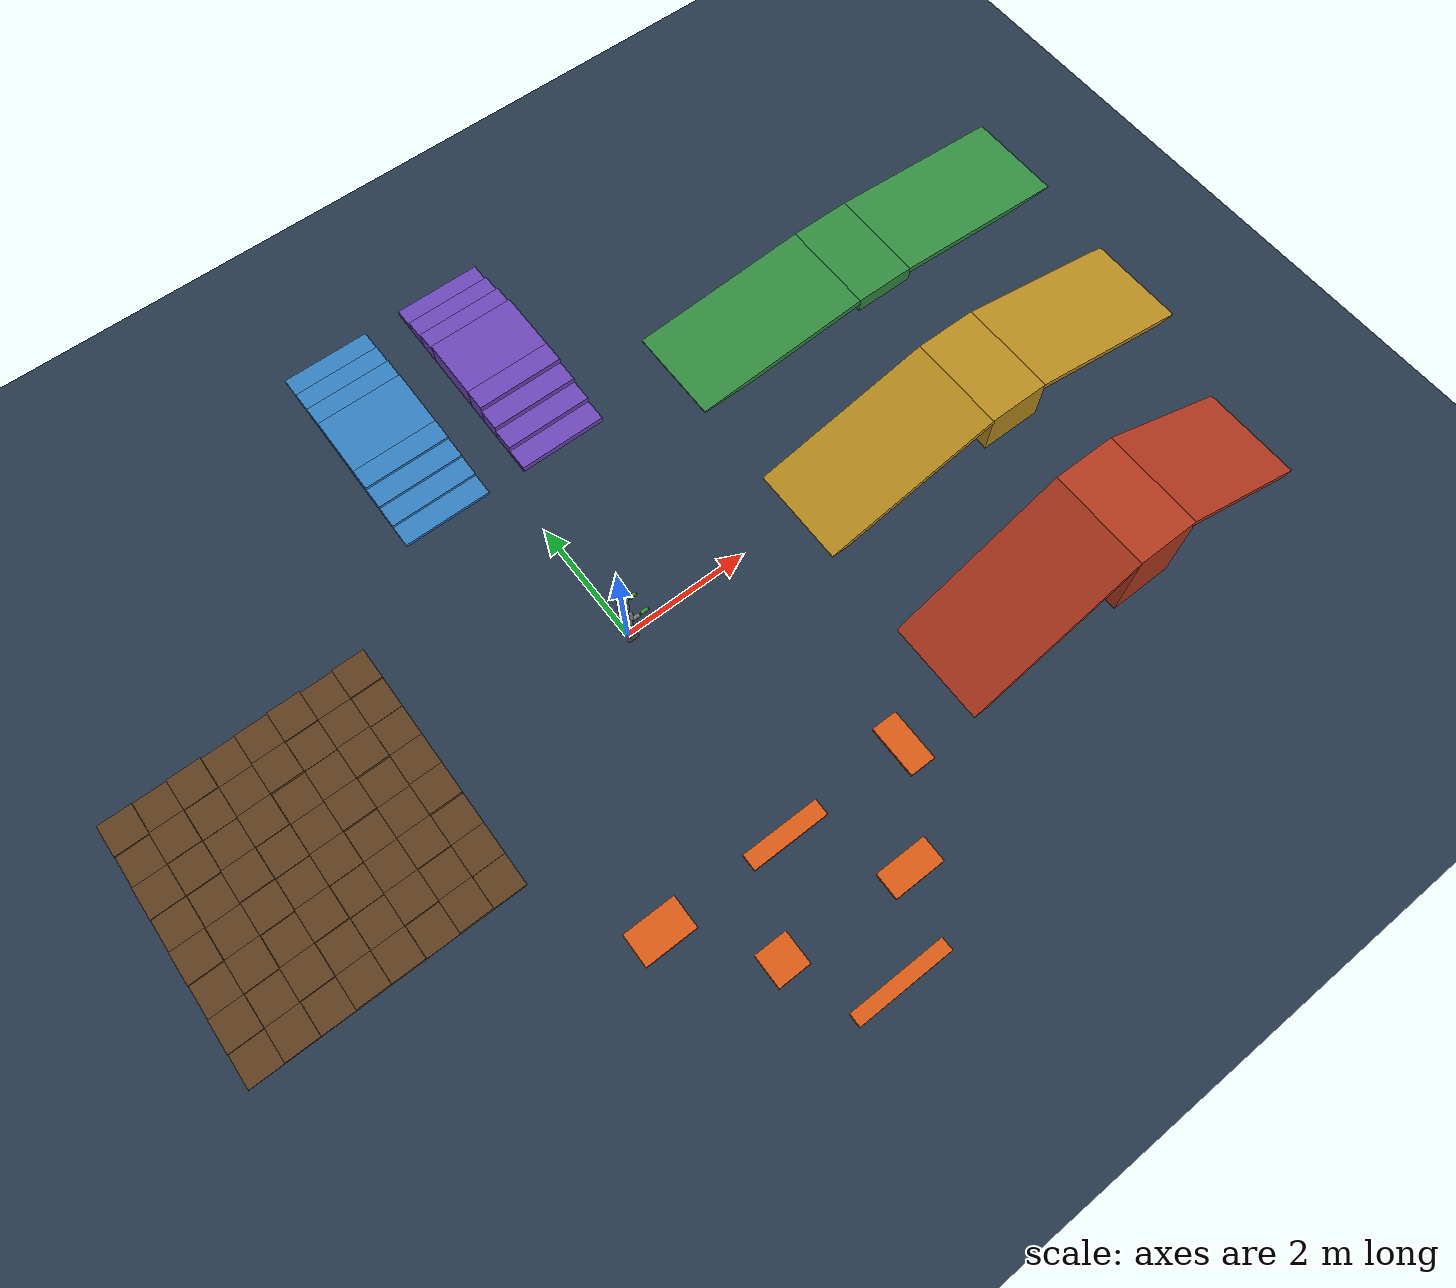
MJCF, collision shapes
<mujoco model="r1 mixed terrain course">
  <compiler angle="radian" meshdir="assets"/>
  <include file="unitree_r1/xmls/r1.xml"/>

  <statistic center="1.5 0 0.8" extent="11"/>

  <visual>
    <headlight diffuse="0.6 0.6 0.6" ambient="0.3 0.3 0.3" specular="0 0 0"/>
    <rgba haze="0.15 0.25 0.35 1"/>
    <global azimuth="-130" elevation="-25"/>
  </visual>

  <asset>
    <texture type="skybox" builtin="gradient" rgb1="0.3 0.5 0.7" rgb2="0 0 0"
             width="512" height="3072"/>
    <texture type="2d" name="mixed_floor_checker" builtin="checker" mark="edge"
             rgb1="0.20 0.28 0.36" rgb2="0.10 0.15 0.22"
             markrgb="0.75 0.75 0.75" width="300" height="300"/>
    <material name="mixed_floor" texture="mixed_floor_checker" texuniform="true"
              texrepeat="24 18" reflectance="0.08"/>
    <material name="slope_5_material" rgba="0.20 0.55 0.25 1"/>
    <material name="slope_15_material" rgba="0.72 0.55 0.12 1"/>
    <material name="slope_30_material" rgba="0.70 0.22 0.12 1"/>
    <material name="stairs_5_material" rgba="0.20 0.50 0.75 1"/>
    <material name="stairs_10_material" rgba="0.42 0.28 0.72 1"/>
    <material name="rough_material" rgba="0.36 0.24 0.12 1"/>
    <material name="obstacle_material" rgba="0.85 0.35 0.08 1"/>
  </asset>

  <default>
    <geom friction="0.9 0.005 0.0001" solimp="0.9 0.95 0.001" solref="0.002 1"/>
    <default class="mixed_terrain">
      <!-- group 0 is visible to the RoughController 187-point height scan. -->
      <geom priority="1" condim="3" group="0"
            friction="1.0 0.005 0.0001"/>
    </default>
  </default>

  <worldbody>
    <light pos="0 0 6" dir="0 0 -1" directional="true"/>

    <!-- Wide flat reference floor. The central 4x4 m area is obstacle-free. -->
    <geom name="mixed_floor" class="mixed_terrain" type="plane" size="12 9 0.05"
          material="mixed_floor"/>

    <!--
      Three independent +X lanes. Each inclined surface is 3 m long, followed
      by a 1 m plateau and a 3 m descent back to z=0.
    -->
    <geom name="slope_5_up" class="mixed_terrain" type="box"
          pos="4.498649834 3 0.080923879" size="1.5 0.8 0.05"
          quat="0.9990482216 0 -0.0436193874 0" material="slope_5_material"/>
    <geom name="slope_5_plateau" class="mixed_terrain" type="box"
          pos="6.488584094 3 0.130733614" size="0.5 0.8 0.130733614"
          material="slope_5_material"/>
    <geom name="slope_5_down" class="mixed_terrain" type="box"
          pos="8.478518354 3 0.080923879" size="1.5 0.8 0.05"
          quat="0.9990482216 0 0.0436193874 0" material="slope_5_material"/>

    <geom name="slope_15_up" class="mixed_terrain" type="box"
          pos="4.461829691 0 0.339932276" size="1.5 0.8 0.05"
          quat="0.9914448614 0 -0.1305261922 0" material="slope_15_material"/>
    <geom name="slope_15_plateau" class="mixed_terrain" type="box"
          pos="6.397777479 0 0.388228568" size="0.5 0.8 0.388228568"
          material="slope_15_material"/>
    <geom name="slope_15_down" class="mixed_terrain" type="box"
          pos="8.333725266 0 0.339932276" size="1.5 0.8 0.05"
          quat="0.9914448614 0 0.1305261922 0" material="slope_15_material"/>

    <geom name="slope_30_up" class="mixed_terrain" type="box"
          pos="4.324038106 -3 0.706698730" size="1.5 0.8 0.05"
          quat="0.9659258263 0 -0.2588190451 0" material="slope_30_material"/>
    <geom name="slope_30_plateau" class="mixed_terrain" type="box"
          pos="6.098076211 -3 0.75" size="0.5 0.8 0.75"
          material="slope_30_material"/>
    <geom name="slope_30_down" class="mixed_terrain" type="box"
          pos="7.872114317 -3 0.706698730" size="1.5 0.8 0.05"
          quat="0.9659258263 0 0.2588190451 0" material="slope_30_material"/>

    <!-- 5 cm staircase lane: four rises, 1 m landing, four drops to floor. -->
    <geom name="stairs_5_up_1" class="mixed_terrain" type="box"
          pos="-1 3.175 0.025" size="0.7 0.175 0.025" material="stairs_5_material"/>
    <geom name="stairs_5_up_2" class="mixed_terrain" type="box"
          pos="-1 3.525 0.05" size="0.7 0.175 0.05" material="stairs_5_material"/>
    <geom name="stairs_5_up_3" class="mixed_terrain" type="box"
          pos="-1 3.875 0.075" size="0.7 0.175 0.075" material="stairs_5_material"/>
    <geom name="stairs_5_up_4" class="mixed_terrain" type="box"
          pos="-1 4.225 0.1" size="0.7 0.175 0.1" material="stairs_5_material"/>
    <geom name="stairs_5_landing" class="mixed_terrain" type="box"
          pos="-1 4.9 0.1" size="0.7 0.5 0.1" material="stairs_5_material"/>
    <geom name="stairs_5_down_1" class="mixed_terrain" type="box"
          pos="-1 5.575 0.075" size="0.7 0.175 0.075" material="stairs_5_material"/>
    <geom name="stairs_5_down_2" class="mixed_terrain" type="box"
          pos="-1 5.925 0.05" size="0.7 0.175 0.05" material="stairs_5_material"/>
    <geom name="stairs_5_down_3" class="mixed_terrain" type="box"
          pos="-1 6.275 0.025" size="0.7 0.175 0.025" material="stairs_5_material"/>

    <!-- 10 cm staircase lane: four rises, 1 m landing, four drops to floor. -->
    <geom name="stairs_10_up_1" class="mixed_terrain" type="box"
          pos="1 3.175 0.05" size="0.7 0.175 0.05" material="stairs_10_material"/>
    <geom name="stairs_10_up_2" class="mixed_terrain" type="box"
          pos="1 3.525 0.1" size="0.7 0.175 0.1" material="stairs_10_material"/>
    <geom name="stairs_10_up_3" class="mixed_terrain" type="box"
          pos="1 3.875 0.15" size="0.7 0.175 0.15" material="stairs_10_material"/>
    <geom name="stairs_10_up_4" class="mixed_terrain" type="box"
          pos="1 4.225 0.2" size="0.7 0.175 0.2" material="stairs_10_material"/>
    <geom name="stairs_10_landing" class="mixed_terrain" type="box"
          pos="1 4.9 0.2" size="0.7 0.5 0.2" material="stairs_10_material"/>
    <geom name="stairs_10_down_1" class="mixed_terrain" type="box"
          pos="1 5.575 0.15" size="0.7 0.175 0.15" material="stairs_10_material"/>
    <geom name="stairs_10_down_2" class="mixed_terrain" type="box"
          pos="1 5.925 0.1" size="0.7 0.175 0.1" material="stairs_10_material"/>
    <geom name="stairs_10_down_3" class="mixed_terrain" type="box"
          pos="1 6.275 0.05" size="0.7 0.175 0.05" material="stairs_10_material"/>

    <!-- Deterministic 4x4 m rough patch: 8x8 overlapping 0.5 m tiles. -->
    <geom name="rough_tile_00" class="mixed_terrain" type="box" pos="-6.75 -1.75 0.01"  size="0.251 0.251 0.01"  material="rough_material"/>
    <geom name="rough_tile_01" class="mixed_terrain" type="box" pos="-6.25 -1.75 0.02"  size="0.251 0.251 0.02"  material="rough_material"/>
    <geom name="rough_tile_02" class="mixed_terrain" type="box" pos="-5.75 -1.75 0.015" size="0.251 0.251 0.015" material="rough_material"/>
    <geom name="rough_tile_03" class="mixed_terrain" type="box" pos="-5.25 -1.75 0.03"  size="0.251 0.251 0.03"  material="rough_material"/>
    <geom name="rough_tile_04" class="mixed_terrain" type="box" pos="-4.75 -1.75 0.025" size="0.251 0.251 0.025" material="rough_material"/>
    <geom name="rough_tile_05" class="mixed_terrain" type="box" pos="-4.25 -1.75 0.01"  size="0.251 0.251 0.01"  material="rough_material"/>
    <geom name="rough_tile_06" class="mixed_terrain" type="box" pos="-3.75 -1.75 0.035" size="0.251 0.251 0.035" material="rough_material"/>
    <geom name="rough_tile_07" class="mixed_terrain" type="box" pos="-3.25 -1.75 0.02"  size="0.251 0.251 0.02"  material="rough_material"/>

    <geom name="rough_tile_08" class="mixed_terrain" type="box" pos="-6.75 -1.25 0.025" size="0.251 0.251 0.025" material="rough_material"/>
    <geom name="rough_tile_09" class="mixed_terrain" type="box" pos="-6.25 -1.25 0.015" size="0.251 0.251 0.015" material="rough_material"/>
    <geom name="rough_tile_10" class="mixed_terrain" type="box" pos="-5.75 -1.25 0.035" size="0.251 0.251 0.035" material="rough_material"/>
    <geom name="rough_tile_11" class="mixed_terrain" type="box" pos="-5.25 -1.25 0.02"  size="0.251 0.251 0.02"  material="rough_material"/>
    <geom name="rough_tile_12" class="mixed_terrain" type="box" pos="-4.75 -1.25 0.01"  size="0.251 0.251 0.01"  material="rough_material"/>
    <geom name="rough_tile_13" class="mixed_terrain" type="box" pos="-4.25 -1.25 0.03"  size="0.251 0.251 0.03"  material="rough_material"/>
    <geom name="rough_tile_14" class="mixed_terrain" type="box" pos="-3.75 -1.25 0.015" size="0.251 0.251 0.015" material="rough_material"/>
    <geom name="rough_tile_15" class="mixed_terrain" type="box" pos="-3.25 -1.25 0.025" size="0.251 0.251 0.025" material="rough_material"/>

    <geom name="rough_tile_16" class="mixed_terrain" type="box" pos="-6.75 -0.75 0.015" size="0.251 0.251 0.015" material="rough_material"/>
    <geom name="rough_tile_17" class="mixed_terrain" type="box" pos="-6.25 -0.75 0.03"  size="0.251 0.251 0.03"  material="rough_material"/>
    <geom name="rough_tile_18" class="mixed_terrain" type="box" pos="-5.75 -0.75 0.01"  size="0.251 0.251 0.01"  material="rough_material"/>
    <geom name="rough_tile_19" class="mixed_terrain" type="box" pos="-5.25 -0.75 0.04"  size="0.251 0.251 0.04"  material="rough_material"/>
    <geom name="rough_tile_20" class="mixed_terrain" type="box" pos="-4.75 -0.75 0.02"  size="0.251 0.251 0.02"  material="rough_material"/>
    <geom name="rough_tile_21" class="mixed_terrain" type="box" pos="-4.25 -0.75 0.025" size="0.251 0.251 0.025" material="rough_material"/>
    <geom name="rough_tile_22" class="mixed_terrain" type="box" pos="-3.75 -0.75 0.035" size="0.251 0.251 0.035" material="rough_material"/>
    <geom name="rough_tile_23" class="mixed_terrain" type="box" pos="-3.25 -0.75 0.01"  size="0.251 0.251 0.01"  material="rough_material"/>

    <geom name="rough_tile_24" class="mixed_terrain" type="box" pos="-6.75 -0.25 0.035" size="0.251 0.251 0.035" material="rough_material"/>
    <geom name="rough_tile_25" class="mixed_terrain" type="box" pos="-6.25 -0.25 0.02"  size="0.251 0.251 0.02"  material="rough_material"/>
    <geom name="rough_tile_26" class="mixed_terrain" type="box" pos="-5.75 -0.25 0.025" size="0.251 0.251 0.025" material="rough_material"/>
    <geom name="rough_tile_27" class="mixed_terrain" type="box" pos="-5.25 -0.25 0.015" size="0.251 0.251 0.015" material="rough_material"/>
    <geom name="rough_tile_28" class="mixed_terrain" type="box" pos="-4.75 -0.25 0.03"  size="0.251 0.251 0.03"  material="rough_material"/>
    <geom name="rough_tile_29" class="mixed_terrain" type="box" pos="-4.25 -0.25 0.01"  size="0.251 0.251 0.01"  material="rough_material"/>
    <geom name="rough_tile_30" class="mixed_terrain" type="box" pos="-3.75 -0.25 0.02"  size="0.251 0.251 0.02"  material="rough_material"/>
    <geom name="rough_tile_31" class="mixed_terrain" type="box" pos="-3.25 -0.25 0.04"  size="0.251 0.251 0.04"  material="rough_material"/>

    <geom name="rough_tile_32" class="mixed_terrain" type="box" pos="-6.75 0.25 0.02"  size="0.251 0.251 0.02"  material="rough_material"/>
    <geom name="rough_tile_33" class="mixed_terrain" type="box" pos="-6.25 0.25 0.01"  size="0.251 0.251 0.01"  material="rough_material"/>
    <geom name="rough_tile_34" class="mixed_terrain" type="box" pos="-5.75 0.25 0.04"  size="0.251 0.251 0.04"  material="rough_material"/>
    <geom name="rough_tile_35" class="mixed_terrain" type="box" pos="-5.25 0.25 0.025" size="0.251 0.251 0.025" material="rough_material"/>
    <geom name="rough_tile_36" class="mixed_terrain" type="box" pos="-4.75 0.25 0.015" size="0.251 0.251 0.015" material="rough_material"/>
    <geom name="rough_tile_37" class="mixed_terrain" type="box" pos="-4.25 0.25 0.035" size="0.251 0.251 0.035" material="rough_material"/>
    <geom name="rough_tile_38" class="mixed_terrain" type="box" pos="-3.75 0.25 0.01"  size="0.251 0.251 0.01"  material="rough_material"/>
    <geom name="rough_tile_39" class="mixed_terrain" type="box" pos="-3.25 0.25 0.03"  size="0.251 0.251 0.03"  material="rough_material"/>

    <geom name="rough_tile_40" class="mixed_terrain" type="box" pos="-6.75 0.75 0.03"  size="0.251 0.251 0.03"  material="rough_material"/>
    <geom name="rough_tile_41" class="mixed_terrain" type="box" pos="-6.25 0.75 0.025" size="0.251 0.251 0.025" material="rough_material"/>
    <geom name="rough_tile_42" class="mixed_terrain" type="box" pos="-5.75 0.75 0.015" size="0.251 0.251 0.015" material="rough_material"/>
    <geom name="rough_tile_43" class="mixed_terrain" type="box" pos="-5.25 0.75 0.035" size="0.251 0.251 0.035" material="rough_material"/>
    <geom name="rough_tile_44" class="mixed_terrain" type="box" pos="-4.75 0.75 0.01"  size="0.251 0.251 0.01"  material="rough_material"/>
    <geom name="rough_tile_45" class="mixed_terrain" type="box" pos="-4.25 0.75 0.02"  size="0.251 0.251 0.02"  material="rough_material"/>
    <geom name="rough_tile_46" class="mixed_terrain" type="box" pos="-3.75 0.75 0.04"  size="0.251 0.251 0.04"  material="rough_material"/>
    <geom name="rough_tile_47" class="mixed_terrain" type="box" pos="-3.25 0.75 0.015" size="0.251 0.251 0.015" material="rough_material"/>

    <geom name="rough_tile_48" class="mixed_terrain" type="box" pos="-6.75 1.25 0.01"  size="0.251 0.251 0.01"  material="rough_material"/>
    <geom name="rough_tile_49" class="mixed_terrain" type="box" pos="-6.25 1.25 0.035" size="0.251 0.251 0.035" material="rough_material"/>
    <geom name="rough_tile_50" class="mixed_terrain" type="box" pos="-5.75 1.25 0.02"  size="0.251 0.251 0.02"  material="rough_material"/>
    <geom name="rough_tile_51" class="mixed_terrain" type="box" pos="-5.25 1.25 0.015" size="0.251 0.251 0.015" material="rough_material"/>
    <geom name="rough_tile_52" class="mixed_terrain" type="box" pos="-4.75 1.25 0.04"  size="0.251 0.251 0.04"  material="rough_material"/>
    <geom name="rough_tile_53" class="mixed_terrain" type="box" pos="-4.25 1.25 0.025" size="0.251 0.251 0.025" material="rough_material"/>
    <geom name="rough_tile_54" class="mixed_terrain" type="box" pos="-3.75 1.25 0.03"  size="0.251 0.251 0.03"  material="rough_material"/>
    <geom name="rough_tile_55" class="mixed_terrain" type="box" pos="-3.25 1.25 0.02"  size="0.251 0.251 0.02"  material="rough_material"/>

    <geom name="rough_tile_56" class="mixed_terrain" type="box" pos="-6.75 1.75 0.025" size="0.251 0.251 0.025" material="rough_material"/>
    <geom name="rough_tile_57" class="mixed_terrain" type="box" pos="-6.25 1.75 0.015" size="0.251 0.251 0.015" material="rough_material"/>
    <geom name="rough_tile_58" class="mixed_terrain" type="box" pos="-5.75 1.75 0.03"  size="0.251 0.251 0.03"  material="rough_material"/>
    <geom name="rough_tile_59" class="mixed_terrain" type="box" pos="-5.25 1.75 0.01"  size="0.251 0.251 0.01"  material="rough_material"/>
    <geom name="rough_tile_60" class="mixed_terrain" type="box" pos="-4.75 1.75 0.02"  size="0.251 0.251 0.02"  material="rough_material"/>
    <geom name="rough_tile_61" class="mixed_terrain" type="box" pos="-4.25 1.75 0.04"  size="0.251 0.251 0.04"  material="rough_material"/>
    <geom name="rough_tile_62" class="mixed_terrain" type="box" pos="-3.75 1.75 0.015" size="0.251 0.251 0.015" material="rough_material"/>
    <geom name="rough_tile_63" class="mixed_terrain" type="box" pos="-3.25 1.75 0.035" size="0.251 0.251 0.035" material="rough_material"/>

    <!-- Six low box obstacles on otherwise flat ground; every top is z=5 cm. -->
    <geom name="low_obstacle_01" class="mixed_terrain" type="box"
          pos="-2 -3.5 0.025" size="0.4 0.25 0.025" material="obstacle_material"/>
    <geom name="low_obstacle_02" class="mixed_terrain" type="box"
          pos="0 -3.5 0.025" size="0.6 0.125 0.025" material="obstacle_material"/>
    <geom name="low_obstacle_03" class="mixed_terrain" type="box"
          pos="2 -3.5 0.025" size="0.2 0.4 0.025" material="obstacle_material"/>
    <geom name="low_obstacle_04" class="mixed_terrain" type="box"
          pos="-1 -4.7 0.025" size="0.25 0.25 0.025" material="obstacle_material"/>
    <geom name="low_obstacle_05" class="mixed_terrain" type="box"
          pos="1 -4.8 0.025" size="0.4 0.2 0.025" material="obstacle_material"/>
    <geom name="low_obstacle_06" class="mixed_terrain" type="box"
          pos="0 -5.8 0.025" size="0.75 0.1 0.025" material="obstacle_material"/>
  </worldbody>

  <!-- Upright standing reset in the clear central flat zone. -->
  <keyframe>
    <key name="stand_on_mixed_terrain"
         qpos="0 0 0.734 1 0 0 0
               -0.1 0 0 0.3 -0.2 0
               -0.1 0 0 0.3 -0.2 0
               0 0
               0.35 0.18 0 0.87 0
               0.35 -0.18 0 0.87 0"/>
  </keyframe>
</mujoco>

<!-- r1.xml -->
<mujoco model="r1">
  <compiler angle="radian" meshdir="assets"/>
  <default>
    <joint damping="0.05" armature="0.01" frictionloss="0.2"/>
  </default>

  <default>
    <default class="r1">
      <default class="visual">
        <geom type="mesh" density="0" contype="0" conaffinity="0" group="2"/>
        <default class="visual_white">
          <geom material="white"/>
        </default>
        <default class="visual_dark_blue">
          <geom material="dark_blue"/>
        </default>
        <default class="visual_dark_grey">
          <geom material="dark_grey"/>
        </default>
      </default>
      <default class="collision">
        <geom type="capsule" priority="1" condim="6" group="3" friction="0.9 0.005 0.0001"/>
        <default class="foot_capsule">
          <geom size="0.01" friction="0.9 0.005 0.0001"/>
        </default>
      </default>
      <site rgba="1 0 0 1" group="5"/>
    </default>
  </default>

  <asset>
    <mesh name="pelvis_link" file="pelvis_link.STL"/>
    <mesh name="left_hip_pitch_link" file="left_hip_pitch_link.STL"/>
    <mesh name="left_hip_roll_link" file="left_hip_roll_link.STL"/>
    <mesh name="left_hip_yaw_link" file="left_hip_yaw_link.STL"/>
    <mesh name="left_knee_link" file="left_knee_link.STL"/>
    <mesh name="left_knee_collision" file="left_knee_collision.STL"/>
    <mesh name="left_ankle_A_link" file="left_ankle_A_link.STL"/>
    <mesh name="left_ankle_A_rod_link" file="left_ankle_A_rod_link.STL"/>
    <mesh name="left_ankle_B_link" file="left_ankle_B_link.STL"/>
    <mesh name="left_ankle_B_rod_link" file="left_ankle_B_rod_link.STL"/>
    <mesh name="left_ankle_pitch_link" file="left_ankle_pitch_link.STL"/>
    <mesh name="left_ankle_roll_link" file="left_ankle_roll_link.STL"/>
    <mesh name="left_ankle_constraint_A_link" file="left_ankle_constraint_A_link.STL"/>
    <mesh name="left_ankle_constraint_B_link" file="left_ankle_constraint_B_link.STL"/>
    <mesh name="right_hip_pitch_link" file="right_hip_pitch_link.STL"/>
    <mesh name="right_hip_roll_link" file="right_hip_roll_link.STL"/>
    <mesh name="right_hip_yaw_link" file="right_hip_yaw_link.STL"/>
    <mesh name="right_knee_link" file="right_knee_link.STL"/>
    <mesh name="right_knee_collision" file="right_knee_collision.STL"/>
    <mesh name="right_ankle_A_link" file="right_ankle_A_link.STL"/>
    <mesh name="right_ankle_A_rod_link" file="right_ankle_A_rod_link.STL"/>
    <mesh name="right_ankle_B_link" file="right_ankle_B_link.STL"/>
    <mesh name="right_ankle_B_rod_link" file="right_ankle_B_rod_link.STL"/>
    <mesh name="right_ankle_pitch_link" file="right_ankle_pitch_link.STL"/>
    <mesh name="right_ankle_roll_link" file="right_ankle_roll_link.STL"/>
    <mesh name="right_ankle_constraint_A_link" file="right_ankle_constraint_A_link.STL"/>
    <mesh name="right_ankle_constraint_B_link" file="right_ankle_constraint_B_link.STL"/>
    <mesh name="imu_in_pelvis_link" file="imu_in_pelvis_link.STL"/>
    <mesh name="waist_roll_link" file="waist_roll_link.STL"/>
    <mesh name="waist_yaw_link" file="waist_yaw_link.STL"/>
    <mesh name="left_shoulder_pitch_link" file="left_shoulder_pitch_link.STL"/>
    <mesh name="left_shoulder_roll_link" file="left_shoulder_roll_link.STL"/>
    <mesh name="left_shoulder_yaw_link" file="left_shoulder_yaw_link.STL"/>
    <mesh name="left_elbow_link" file="left_elbow_link.STL"/>
    <mesh name="left_wrist_roll_link" file="left_wrist_roll_link.STL"/>
    <mesh name="right_shoulder_pitch_link" file="right_shoulder_pitch_link.STL"/>
    <mesh name="right_shoulder_roll_link" file="right_shoulder_roll_link.STL"/>
    <mesh name="right_shoulder_yaw_link" file="right_shoulder_yaw_link.STL"/>
    <mesh name="right_elbow_link" file="right_elbow_link.STL"/>
    <mesh name="right_wrist_roll_link" file="right_wrist_roll_link.STL"/>
    <mesh name="head_pitch_link" file="head_pitch_link.STL"/>
    <mesh name="head_yaw_link" file="head_yaw_link.STL"/>
    <material name="white" rgba="0.95 0.95 0.98 1" specular="0.8" shininess="0.9" reflectance="0.3"/>
    <material name="dark_blue" rgba="0.08 0.14 0.28 1" specular="0.7" shininess="0.8" reflectance="0.2"/>
    <material name="dark_grey" rgba="0.14 0.14 0.16 1" specular="0.2" shininess="0.2" reflectance="0.05"/>
  </asset>

  <worldbody>
    <body name="pelvis" pos="0 0 0.74" childclass="r1">
      <inertial pos="0.0269881 0.000184581 -0.0704106" quat="0.703476 0.707138 -0.0498219 0.0509351" mass="2.25001" diaginertia="0.00646721 0.00620017 0.00381749"/>
      <joint name="floating_base_joint" type="free" limited="false" actuatorfrclimited="false"/>
      <geom class="visual_dark_blue" mesh="pelvis_link"/>
      <geom class="visual_dark_grey" pos="0.0762025 2.19914e-05 -0.0884315" quat="1 0 0 0" mesh="imu_in_pelvis_link"/>
      <geom name="pelvis_collision" class="collision" type="sphere" size="0.05" pos="0.03 0 -0.08"/>
      <site name="imu" size="0.01" pos="0 0 0"/>
      <body name="left_hip_pitch_link" pos="0.0325 0.0704672 -0.0902351" quat="0.976296 -0.21644 0 0">
        <inertial pos="-0.003907 0.0415 -0.043716" quat="0.977607 0.186708 0.0209888 0.0947863" mass="0.935482" diaginertia="0.00105051 0.000997373 0.000565117"/>
        <joint name="left_hip_pitch_joint" pos="0 0 0" axis="0 1 0" range="-2.93215 2.54818"/>
        <geom class="visual_dark_grey" mesh="left_hip_pitch_link"/>
        <body name="left_hip_roll_link" pos="0.0248 0.045 -0.053" quat="0.976296 0.21644 0 0">
          <inertial pos="-0.008002 -0.00206 -0.032798" quat="0.917982 -0.152984 0.363871 0.0387668" mass="0.207609" diaginertia="0.000298715 0.000236156 0.000181129"/>
          <joint name="left_hip_roll_joint" pos="0 0 0" axis="1 0 0" range="-1.0472 1.74533"/>
          <geom class="visual_dark_grey" mesh="left_hip_roll_link"/>
          <geom name="left_hip_collision" class="collision" size="0.03" fromto="-0.025 0 0.025 -0.025 0 -0.025"/>
          <body name="left_hip_yaw_link" pos="-0.0194507 -0.0006 -0.0618">
            <inertial pos="-0.010059 -0.004848 -0.093609" quat="0.648721 0.0354742 0.0856084 0.755364" mass="1.73967" diaginertia="0.0083895 0.00828665 0.00127385"/>
            <joint name="left_hip_yaw_joint" pos="0 0 0" axis="0 0 1" range="-2.7402 2.7402"/>
            <geom class="visual_white" mesh="left_hip_yaw_link"/>
            <geom name="left_thigh_collision" class="collision" size="0.03" fromto="0 0 -0.025 0 0 -0.125"/>
            <body name="left_knee_link" pos="-0.02315 0.01866 -0.159301">
              <inertial pos="-0.00946428 -0.0182147 -0.135746" quat="0.678998 -0.0104211 0.029549 0.733471" mass="2.37477" diaginertia="0.0128449 0.0125305 0.00195841"/>
              <joint name="left_knee_joint" pos="0 0 0" axis="0 1 0" range="-0.174533 2.42601"/>
              <geom class="visual_white" mesh="left_knee_link"/>
              <geom name="left_shin_collision" class="collision" size="0.035" fromto="0.015 -0.02 -0.05 -0.01 -0.02 -0.2"/>
              <geom name="left_linkage_brace_collision" class="collision" size="0.015" fromto="-0.01 -0.02 -0.26 -0.015 -0.02 -0.32"/>
              <body name="left_ankle_pitch_link" pos="-0.0168139 -0.0205811 -0.309175">
                <inertial pos="-0.000104 0 -0.00772" quat="0.707107 0 0 0.707107" mass="0.071231" diaginertia="1.2e-05 7e-06 7e-06"/>
                <joint name="left_ankle_pitch_joint" pos="0 0 0" axis="0 1 0" range="-0.87266 0.57596"/>
                <geom class="visual_dark_blue" mesh="left_ankle_pitch_link"/>
                <body name="left_ankle_roll_link">
                  <inertial pos="0.0296647 0 -0.0326975" quat="0 0.737468 0 0.675382" mass="0.481688" diaginertia="0.00126935 0.00121244 0.000230475"/>
                  <joint name="left_ankle_roll_joint" pos="0 0 0" axis="1 0 0" range="-0.2618 0.2618"/>
                  <geom class="visual_dark_blue" mesh="left_ankle_roll_link"/>
                  <geom pos="0.021 0.014 -0.0094" quat="1 0 0 0" class="visual_dark_grey" mesh="left_ankle_constraint_A_link"/>
                  <geom pos="0.021 -0.014 -0.0094" quat="1 0 0 0" class="visual_dark_grey" mesh="left_ankle_constraint_B_link"/>
                  <geom name="left_foot1_collision" class="foot_capsule" fromto="0.05 -0.025 -0.045 0.1 -0.025 -0.045"/>
                  <geom name="left_foot2_collision" class="foot_capsule" fromto="-0.03 -0.02 -0.045 0.115 -0.02 -0.045"/>
                  <geom name="left_foot3_collision" class="foot_capsule" fromto="-0.038 -0.01 -0.045 0.12 -0.01 -0.045"/>
                  <geom name="left_foot4_collision" class="foot_capsule" fromto="-0.04 0 -0.045 0.123 0 -0.045"/>
                  <geom name="left_foot5_collision" class="foot_capsule" fromto="-0.038 0.01 -0.045 0.12 0.01 -0.045"/>
                  <geom name="left_foot6_collision" class="foot_capsule" fromto="-0.03 0.02 -0.045 0.115 0.02 -0.045"/>
                  <geom name="left_foot7_collision" class="foot_capsule" fromto="0.05 0.025 -0.045 0.1 0.025 -0.045"/>
                  <site name="left_foot" rgba="1 0 0 1" pos="0.04 0 -0.055"/>
                </body>
              </body>
            </body>
          </body>
        </body>
      </body>
      <body name="right_hip_pitch_link" pos="0.0325 -0.0704672 -0.0902351" quat="0.976296 0.21644 0 0">
        <inertial pos="-0.003907 -0.0415 -0.043716" quat="0.977607 -0.186708 0.0209888 -0.0947863" mass="0.935482" diaginertia="0.00105051 0.000997373 0.000565117"/>
        <joint name="right_hip_pitch_joint" pos="0 0 0" axis="0 1 0" range="-2.93215 2.54818"/>
        <geom class="visual_dark_grey" mesh="right_hip_pitch_link"/>
        <body name="right_hip_roll_link" pos="0.0248 -0.045 -0.053" quat="0.976296 -0.21644 0 0">
          <inertial pos="-0.008002 0.00206 -0.032798" quat="0.917982 0.152984 0.363871 -0.0387668" mass="0.207609" diaginertia="0.000298715 0.000236156 0.000181129"/>
          <joint name="right_hip_roll_joint" pos="0 0 0" axis="1 0 0" range="-1.74533 1.0472"/>
          <geom class="visual_dark_grey" mesh="right_hip_roll_link"/>
          <geom name="right_hip_collision" class="collision" size="0.03" fromto="-0.025 0 0.025 -0.025 0 -0.025"/>
          <body name="right_hip_yaw_link" pos="-0.0194507 0.0006 -0.0618">
            <inertial pos="-0.010059 0.004848 -0.093609" quat="0.755364 0.0856084 0.0354742 0.648721" mass="1.73967" diaginertia="0.0083895 0.00828665 0.00127385"/>
            <joint name="right_hip_yaw_joint" pos="0 0 0" axis="0 0 1" range="-2.7402 2.7402"/>
            <geom class="visual_white" mesh="right_hip_yaw_link"/>
            <geom name="right_thigh_collision" class="collision" size="0.03" fromto="0 0 -0.025 0 0 -0.125"/>
            <body name="right_knee_link" pos="-0.02315 -0.01866 -0.159301">
              <inertial pos="-0.00946428 0.0182147 -0.135746" quat="0.733471 0.029549 -0.0104211 0.678998" mass="2.37477" diaginertia="0.0128449 0.0125305 0.00195841"/>
              <joint name="right_knee_joint" pos="0 0 0" axis="0 1 0" range="-0.17453 2.42601"/>
              <geom class="visual_white" mesh="right_knee_link"/>
              <geom name="right_shin_collision" class="collision" size="0.035" fromto="0.015 0.02 -0.05 -0.01 0.02 -0.2"/>
              <geom name="right_linkage_brace_collision" class="collision" size="0.015" fromto="-0.01 0.02 -0.26 -0.015 0.02 -0.32"/>
              <body name="right_ankle_pitch_link" pos="-0.0168139 0.0205811 -0.309175">
                <inertial pos="-0.000104 0 -0.00772" quat="0.707107 0 0 0.707107" mass="0.071231" diaginertia="1.2e-05 7e-06 7e-06"/>
                <joint name="right_ankle_pitch_joint" pos="0 0 0" axis="0 1 0" range="-0.87266 0.57596"/>
                <geom class="visual_dark_blue" mesh="right_ankle_pitch_link"/>
                <body name="right_ankle_roll_link">
                  <inertial pos="0.0296647 0 -0.0326975" quat="0 0.737468 0 0.675382" mass="0.481688" diaginertia="0.00126935 0.00121244 0.000230475"/>
                  <joint name="right_ankle_roll_joint" pos="0 0 0" axis="1 0 0" range="-0.261799 0.261799"/>
                  <geom class="visual_dark_blue" mesh="right_ankle_roll_link"/>
                  <geom pos="0.021 -0.014 -0.0094" quat="1 0 0 0" class="visual_dark_grey" mesh="right_ankle_constraint_A_link"/>
                  <geom pos="0.021 0.014 -0.0094" quat="1 0 0 0" class="visual_dark_grey" mesh="right_ankle_constraint_B_link"/>
                  <geom name="right_foot1_collision" class="foot_capsule" fromto="0.05 -0.025 -0.045 0.1 -0.025 -0.045"/>
                  <geom name="right_foot2_collision" class="foot_capsule" fromto="-0.03 -0.02 -0.045 0.115 -0.02 -0.045"/>
                  <geom name="right_foot3_collision" class="foot_capsule" fromto="-0.038 -0.01 -0.045 0.12 -0.01 -0.045"/>
                  <geom name="right_foot4_collision" class="foot_capsule" fromto="-0.04 0 -0.045 0.123 0 -0.045"/>
                  <geom name="right_foot5_collision" class="foot_capsule" fromto="-0.038 0.01 -0.045 0.12 0.01 -0.045"/>
                  <geom name="right_foot6_collision" class="foot_capsule" fromto="-0.03 0.02 -0.045 0.115 0.02 -0.045"/>
                  <geom name="right_foot7_collision" class="foot_capsule" fromto="0.05 0.025 -0.045 0.1 0.025 -0.045"/>
                  <site name="right_foot" rgba="1 0 0 1" pos="0.04 0 -0.055"/>
                </body>
              </body>
            </body>
          </body>
        </body>
      </body>
      <body name="waist_roll_link">
        <inertial pos="0.030601 0 0.004788" quat="0.999992 0 -0.00390592 0" mass="0.920736" diaginertia="0.000806008 0.000734 0.000677992"/>
        <joint name="waist_roll_joint" pos="0 0 0" axis="1 0 0" range="-0.5236 0.5236"/>
        <geom pos="0.0325 0 0.049" class="visual_white" mesh="waist_roll_link"/>
        <body name="torso_link" pos="0.0325 0 0.049">
          <inertial pos="0.000409289 -0.000333222 0.181216" quat="0.999992 -0.000325591 0.00182329 -0.00361781" mass="7.3387" diaginertia="0.110151 0.10028 0.0271256"/>
          <joint name="waist_yaw_joint" pos="0 0 0" axis="0 0 1" range="-2.618 2.618"/>
          <geom class="visual_white" mesh="waist_yaw_link"/>
          <geom pos="-0.006 0.03155 0.255" class="visual_white" mesh="head_pitch_link"/>
          <geom pos="-0.0049874 0 0.3715" quat="1 0 0 0" class="visual_white" mesh="head_yaw_link"/>
          <!-- dev_pc (1.25kg) TAT 2026-08-01: model sim khop model train policy_5 (mjlab 28.93kg).
               Bat lai neu test cau hinh robot-that-co-payload (30.18kg). -->
          <geom name="torso_collision" class="collision" size="0.08" fromto="-0.02 0 0.1 -0.02 0 0.15"/>
          <geom name="head_collision" class="collision" type="sphere" size="0.055" pos="0.015 0 0.35"/>
          <body name="left_shoulder_pitch_link" pos="0 0.085688 0.19749" quat="0.99144 0.130561 0 0">
            <inertial pos="0.00294386 0.0447687 -0.0228687" quat="0.933514 0.315801 -0.107611 0.131308" mass="0.83795" diaginertia="0.000664554 0.000644431 0.000530845"/>
            <joint name="left_shoulder_pitch_joint" pos="0 0 0" axis="0 1 0" range="-3.1416 2.0944"/>
            <geom class="visual_white" mesh="left_shoulder_pitch_link"/>
            <body name="left_shoulder_roll_link" pos="0.03445 0.047132 -0.025693" quat="0.99144 -0.130561 0 0">
              <inertial pos="-0.037828 0.003967 -0.066496" quat="0.704928 -0.0676661 -0.0976966 0.699252" mass="0.740212" diaginertia="0.00108994 0.000995148 0.000547915"/>
              <joint name="left_shoulder_roll_joint" pos="0 0 0" axis="1 0 0" range="-0.22689 2.4784"/>
              <geom class="visual_dark_grey" mesh="left_shoulder_roll_link"/>
              <body name="left_shoulder_yaw_link" pos="-0.03445 0.0043 -0.10835">
                <inertial pos="0.013143 -0.004355 -0.072948" quat="0.944453 -0.083861 -0.114993 0.29623" mass="0.738441" diaginertia="0.000862551 0.000851784 0.000435665"/>
                <joint name="left_shoulder_yaw_joint" pos="0 0 0" axis="0 0 1" range="-1.9199 1.9199"/>
                <geom class="visual_white" mesh="left_shoulder_yaw_link"/>
                <geom name="left_shoulder_yaw_collision" class="collision" size="0.03" fromto="0 0 -0.03 0 0 0.1"/>
                <body name="left_elbow_link" pos="0.016191 0.026461 -0.082858">
                  <inertial pos="0.072371 -0.024612 -0.011566" quat="0.590432 0.585258 0.4407 0.338595" mass="0.759419" diaginertia="0.000969031 0.000938046 0.000470923"/>
                  <joint name="left_elbow_joint" pos="0 0 0" axis="0 1 0" range="-0.97564 2.1852"/>
                  <geom class="visual_white" mesh="left_elbow_link"/>
                  <geom name="left_elbow_collision" class="collision" size="0.03" fromto="0.015 -0.025 -0.01 0.085 -0.025 -0.01"/>
                  <body name="left_wrist_roll_link" pos="0.11218 -0.03002 -0.011702">
                    <inertial pos="0.068045 -0.001688 0.001392" quat="0.442664 0.566917 0.411512 0.559742" mass="0.324767" diaginertia="0.000717953 0.000704181 0.000156865"/>
                    <joint name="left_wrist_roll_joint" pos="0 0 0" axis="1 0 0" range="-1.9199 1.9199"/>
                    <geom class="visual_dark_grey" mesh="left_wrist_roll_link"/>
                    <geom name="left_hand_collision" class="collision" size="0.03" rgba="0.2 0.6 0.2 0.2" fromto="0.05 0 0 0.12 0 0"/>
                    <site name="left_palm" pos="0.1 0 0" size="0.01"/>
                  </body>
                </body>
              </body>
            </body>
          </body>
          <body name="right_shoulder_pitch_link" pos="0 -0.085688 0.19749" quat="0.99144 -0.130561 0 0">
            <inertial pos="0.00294386 -0.0447687 -0.0228687" quat="0.933514 -0.315801 -0.107611 -0.131308" mass="0.83795" diaginertia="0.000664554 0.000644431 0.000530845"/>
            <joint name="right_shoulder_pitch_joint" pos="0 0 0" axis="0 1 0" range="-3.1416 2.0944"/>
            <geom class="visual_white" mesh="right_shoulder_pitch_link"/>
            <body name="right_shoulder_roll_link" pos="0.03445 -0.047132 -0.025693" quat="0.99144 0.130561 0 0">
              <inertial pos="-0.037828 -0.003967 -0.066496" quat="0.699252 -0.0976966 -0.0676661 0.704928" mass="0.740212" diaginertia="0.00108994 0.000995148 0.000547915"/>
              <joint name="right_shoulder_roll_joint" pos="0 0 0" axis="1 0 0" range="-2.47849 0.2268"/>
              <geom class="visual_dark_grey" mesh="right_shoulder_roll_link"/>
              <body name="right_shoulder_yaw_link" pos="-0.03445 -0.0043 -0.10835">
                <inertial pos="0.013143 0.004355 -0.072948" quat="0.944453 0.083861 -0.114993 -0.29623" mass="0.738441" diaginertia="0.000862551 0.000851784 0.000435665"/>
                <joint name="right_shoulder_yaw_joint" pos="0 0 0" axis="0 0 1" range="-1.9199 1.9199"/>
                <geom class="visual_white" mesh="right_shoulder_yaw_link"/>
                <geom name="right_shoulder_yaw_collision" class="collision" size="0.03" fromto="0 0 -0.03 0 0 0.1"/>
                <body name="right_elbow_link" pos="0.016191 -0.026461 -0.082858">
                  <inertial pos="0.072371 0.024612 -0.011566" quat="0.338595 0.4407 0.585258 0.590432" mass="0.759419" diaginertia="0.000969031 0.000938046 0.000470923"/>
                  <joint name="right_elbow_joint" pos="0 0 0" axis="0 1 0" range="-0.97564 2.1852"/>
                  <geom class="visual_white" mesh="right_elbow_link"/>
                  <geom name="right_elbow_collision" class="collision" size="0.03" fromto="0.015 0.025 -0.01 0.085 0.025 -0.01"/>
                  <body name="right_wrist_roll_link" pos="0.11218 0.03002 -0.011702">
                    <inertial pos="0.068045 0.001688 0.001392" quat="0.559742 0.411512 0.566917 0.442664" mass="0.324767" diaginertia="0.000717953 0.000704181 0.000156865"/>
                    <joint name="right_wrist_roll_joint" pos="0 0 0" axis="1 0 0" range="-1.9199 1.9199"/>
                    <geom class="visual_dark_grey" mesh="right_wrist_roll_link"/>
                    <geom name="right_hand_collision" class="collision" size="0.03" rgba="0.2 0.6 0.2 0.2" fromto="0.05 0 0 0.12 0 0"/>
                    <site name="right_palm" pos="0.1 0 0" size="0.01"/>
                  </body>
                </body>
              </body>
            </body>
          </body>
        </body>
      </body>
    </body>
  </worldbody>
  <contact>
    <exclude body1="left_elbow_link" body2="left_wrist_roll_link"/>
    <exclude body1="right_elbow_link" body2="right_wrist_roll_link"/>
    <exclude body1="pelvis" body2="right_hip_roll_link"/>
    <exclude body1="pelvis" body2="left_hip_roll_link"/>
  </contact>
  <actuator>
    <motor name="left_hip_pitch" joint="left_hip_pitch_joint" ctrlrange="-88 88"/>
    <motor name="left_hip_roll" joint="left_hip_roll_joint" ctrlrange="-88 88"/>
    <motor name="left_hip_yaw" joint="left_hip_yaw_joint" ctrlrange="-88 88"/>
    <motor name="left_knee" joint="left_knee_joint" ctrlrange="-139 139"/>
    <motor name="left_ankle_pitch" joint="left_ankle_pitch_joint" ctrlrange="-50 50"/>
    <motor name="left_ankle_roll" joint="left_ankle_roll_joint" ctrlrange="-50 50"/>

    <motor name="right_hip_pitch" joint="right_hip_pitch_joint" ctrlrange="-88 88"/>
    <motor name="right_hip_roll" joint="right_hip_roll_joint" ctrlrange="-88 88"/>
    <motor name="right_hip_yaw" joint="right_hip_yaw_joint" ctrlrange="-88 88"/>
    <motor name="right_knee" joint="right_knee_joint" ctrlrange="-139 139"/>
    <motor name="right_ankle_pitch" joint="right_ankle_pitch_joint" ctrlrange="-50 50"/>
    <motor name="right_ankle_roll" joint="right_ankle_roll_joint" ctrlrange="-50 50"/>

    <motor name="waist_roll" joint="waist_roll_joint" ctrlrange="-50 50"/>
    <motor name="waist_yaw" joint="waist_yaw_joint" ctrlrange="-88 88"/>

    <motor name="left_shoulder_pitch" joint="left_shoulder_pitch_joint" ctrlrange="-25 25"/>
    <motor name="left_shoulder_roll" joint="left_shoulder_roll_joint" ctrlrange="-25 25"/>
    <motor name="left_shoulder_yaw" joint="left_shoulder_yaw_joint" ctrlrange="-25 25"/>
    <motor name="left_elbow" joint="left_elbow_joint" ctrlrange="-25 25"/>
    <motor name="left_wrist_roll" joint="left_wrist_roll_joint" ctrlrange="-25 25"/>

    <motor name="right_shoulder_pitch" joint="right_shoulder_pitch_joint" ctrlrange="-25 25"/>
    <motor name="right_shoulder_roll" joint="right_shoulder_roll_joint" ctrlrange="-25 25"/>
    <motor name="right_shoulder_yaw" joint="right_shoulder_yaw_joint" ctrlrange="-25 25"/>
    <motor name="right_elbow" joint="right_elbow_joint" ctrlrange="-25 25"/>
    <motor name="right_wrist_roll" joint="right_wrist_roll_joint" ctrlrange="-25 25"/>
  </actuator>

  <sensor>
    <jointpos name="left_hip_pitch_pos" joint="left_hip_pitch_joint" />
    <jointpos name="left_hip_roll_pos" joint="left_hip_roll_joint" />
    <jointpos name="left_hip_yaw_pos" joint="left_hip_yaw_joint" />
    <jointpos name="left_knee_pos" joint="left_knee_joint" />
    <jointpos name="left_ankle_pitch_pos" joint="left_ankle_pitch_joint" />
    <jointpos name="left_ankle_roll_pos" joint="left_ankle_roll_joint" />
    <jointpos name="right_hip_pitch_pos" joint="right_hip_pitch_joint" />
    <jointpos name="right_hip_roll_pos" joint="right_hip_roll_joint" />
    <jointpos name="right_hip_yaw_pos" joint="right_hip_yaw_joint" />
    <jointpos name="right_knee_pos" joint="right_knee_joint" />
    <jointpos name="right_ankle_pitch_pos" joint="right_ankle_pitch_joint" />
    <jointpos name="right_ankle_roll_pos" joint="right_ankle_roll_joint" />
    <jointpos name="waist_roll_pos" joint="waist_roll_joint" />
    <jointpos name="waist_yaw_pos" joint="waist_yaw_joint" />
    <jointpos name="left_shoulder_pitch_pos" joint="left_shoulder_pitch_joint" />
    <jointpos name="left_shoulder_roll_pos" joint="left_shoulder_roll_joint" />
    <jointpos name="left_shoulder_yaw_pos" joint="left_shoulder_yaw_joint" />
    <jointpos name="left_elbow_pos" joint="left_elbow_joint" />
    <jointpos name="left_wrist_roll_pos" joint="left_wrist_roll_joint" />
    <jointpos name="right_shoulder_pitch_pos" joint="right_shoulder_pitch_joint" />
    <jointpos name="right_shoulder_roll_pos" joint="right_shoulder_roll_joint" />
    <jointpos name="right_shoulder_yaw_pos" joint="right_shoulder_yaw_joint" />
    <jointpos name="right_elbow_pos" joint="right_elbow_joint" />
    <jointpos name="right_wrist_roll_pos" joint="right_wrist_roll_joint" />

    <jointvel name="left_hip_pitch_vel" joint="left_hip_pitch_joint" />
    <jointvel name="left_hip_roll_vel" joint="left_hip_roll_joint" />
    <jointvel name="left_hip_yaw_vel" joint="left_hip_yaw_joint" />
    <jointvel name="left_knee_vel" joint="left_knee_joint" />
    <jointvel name="left_ankle_pitch_vel" joint="left_ankle_pitch_joint" />
    <jointvel name="left_ankle_roll_vel" joint="left_ankle_roll_joint" />
    <jointvel name="right_hip_pitch_vel" joint="right_hip_pitch_joint" />
    <jointvel name="right_hip_roll_vel" joint="right_hip_roll_joint" />
    <jointvel name="right_hip_yaw_vel" joint="right_hip_yaw_joint" />
    <jointvel name="right_knee_vel" joint="right_knee_joint" />
    <jointvel name="right_ankle_pitch_vel" joint="right_ankle_pitch_joint" />
    <jointvel name="right_ankle_roll_vel" joint="right_ankle_roll_joint" />
    <jointvel name="waist_roll_vel" joint="waist_roll_joint" />
    <jointvel name="waist_yaw_vel" joint="waist_yaw_joint" />
    <jointvel name="left_shoulder_pitch_vel" joint="left_shoulder_pitch_joint" />
    <jointvel name="left_shoulder_roll_vel" joint="left_shoulder_roll_joint" />
    <jointvel name="left_shoulder_yaw_vel" joint="left_shoulder_yaw_joint" />
    <jointvel name="left_elbow_vel" joint="left_elbow_joint" />
    <jointvel name="left_wrist_roll_vel" joint="left_wrist_roll_joint" />
    <jointvel name="right_shoulder_pitch_vel" joint="right_shoulder_pitch_joint" />
    <jointvel name="right_shoulder_roll_vel" joint="right_shoulder_roll_joint" />
    <jointvel name="right_shoulder_yaw_vel" joint="right_shoulder_yaw_joint" />
    <jointvel name="right_elbow_vel" joint="right_elbow_joint" />
    <jointvel name="right_wrist_roll_vel" joint="right_wrist_roll_joint" />

    <jointactuatorfrc name="left_hip_pitch_torque" joint="left_hip_pitch_joint" />
    <jointactuatorfrc name="left_hip_roll_torque" joint="left_hip_roll_joint" />
    <jointactuatorfrc name="left_hip_yaw_torque" joint="left_hip_yaw_joint" />
    <jointactuatorfrc name="left_knee_torque" joint="left_knee_joint" />
    <jointactuatorfrc name="left_ankle_pitch_torque" joint="left_ankle_pitch_joint" />
    <jointactuatorfrc name="left_ankle_roll_torque" joint="left_ankle_roll_joint" />
    <jointactuatorfrc name="right_hip_pitch_torque" joint="right_hip_pitch_joint" />
    <jointactuatorfrc name="right_hip_roll_torque" joint="right_hip_roll_joint" />
    <jointactuatorfrc name="right_hip_yaw_torque" joint="right_hip_yaw_joint" />
    <jointactuatorfrc name="right_knee_torque" joint="right_knee_joint" />
    <jointactuatorfrc name="right_ankle_pitch_torque" joint="right_ankle_pitch_joint" />
    <jointactuatorfrc name="right_ankle_roll_torque" joint="right_ankle_roll_joint" />
    <jointactuatorfrc name="waist_roll_torque" joint="waist_roll_joint" />
    <jointactuatorfrc name="waist_yaw_torque" joint="waist_yaw_joint" />
    <jointactuatorfrc name="left_shoulder_pitch_torque" joint="left_shoulder_pitch_joint" />
    <jointactuatorfrc name="left_shoulder_roll_torque" joint="left_shoulder_roll_joint" />
    <jointactuatorfrc name="left_shoulder_yaw_torque" joint="left_shoulder_yaw_joint" />
    <jointactuatorfrc name="left_elbow_torque" joint="left_elbow_joint" />
    <jointactuatorfrc name="left_wrist_roll_torque" joint="left_wrist_roll_joint" />
    <jointactuatorfrc name="right_shoulder_pitch_torque" joint="right_shoulder_pitch_joint" />
    <jointactuatorfrc name="right_shoulder_roll_torque" joint="right_shoulder_roll_joint" />
    <jointactuatorfrc name="right_shoulder_yaw_torque" joint="right_shoulder_yaw_joint" />
    <jointactuatorfrc name="right_elbow_torque" joint="right_elbow_joint" />
    <jointactuatorfrc name="right_wrist_roll_torque" joint="right_wrist_roll_joint" />

    <framequat name="imu_quat" objtype="site" objname="imu" />
    <gyro name="imu_gyro" site="imu" />
    <accelerometer name="imu_acc" site="imu" />

    <framepos name="frame_pos" objtype="site" objname="imu" />
    <framelinvel name="frame_vel" objtype="site" objname="imu" />
  </sensor>
</mujoco>
